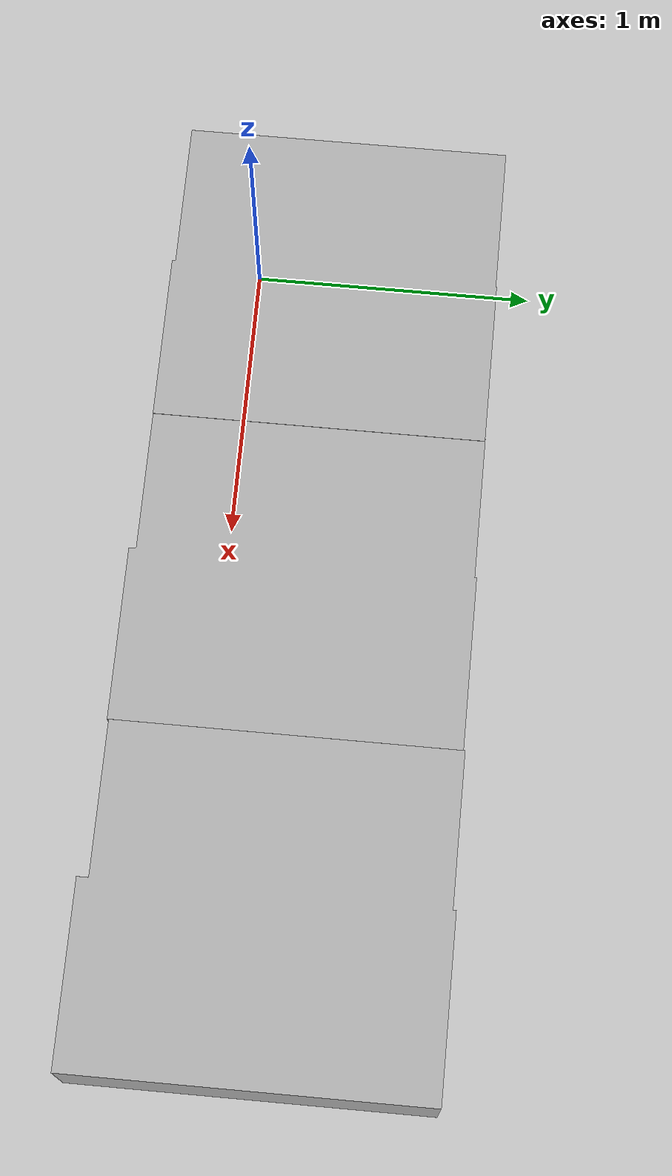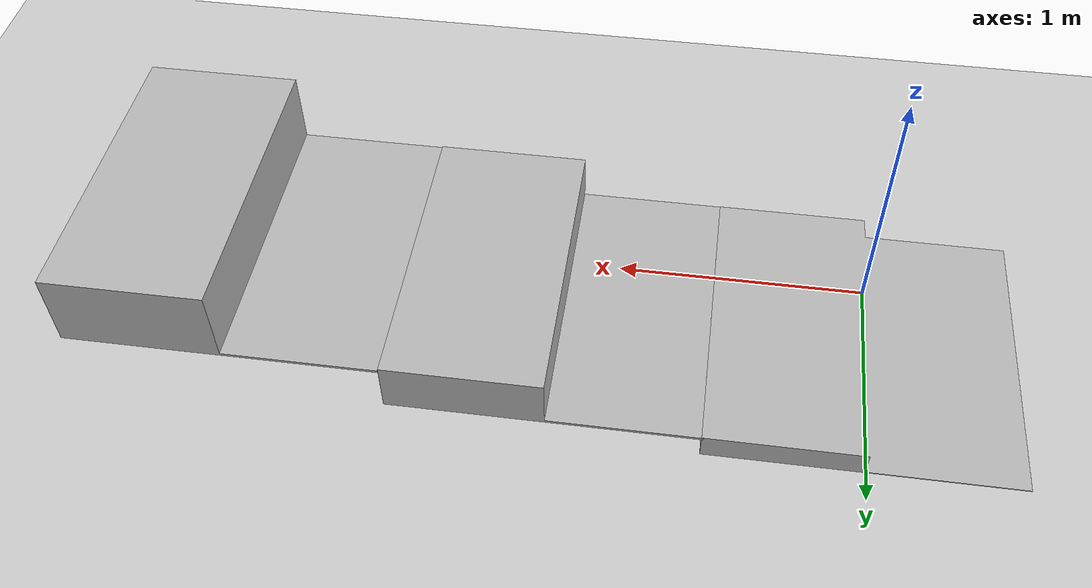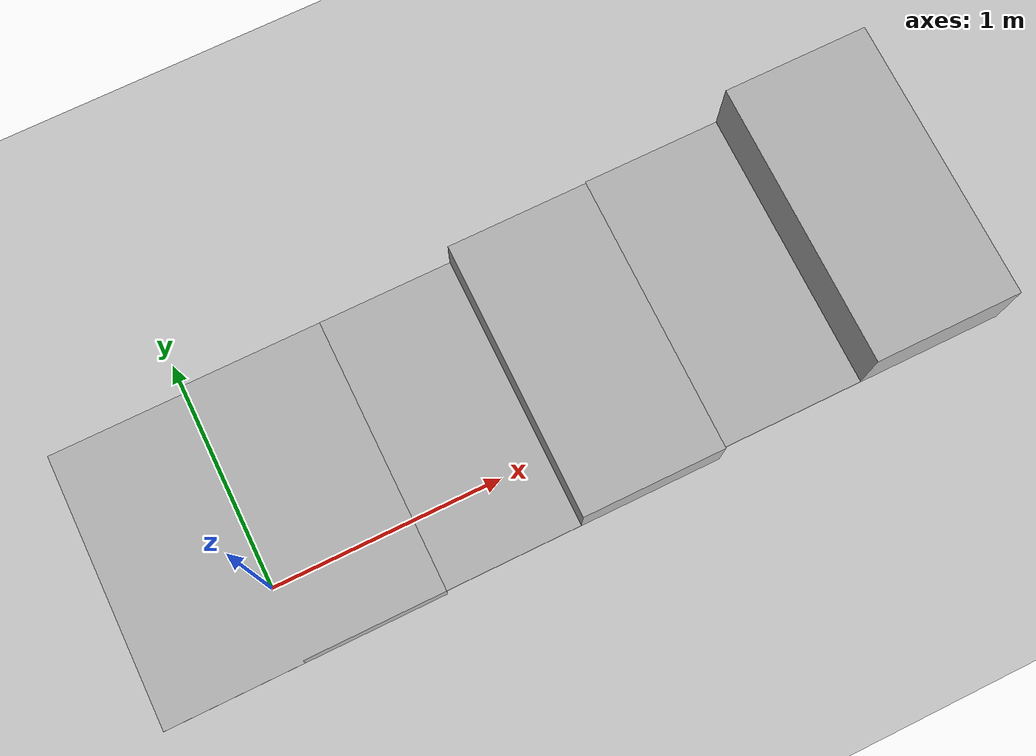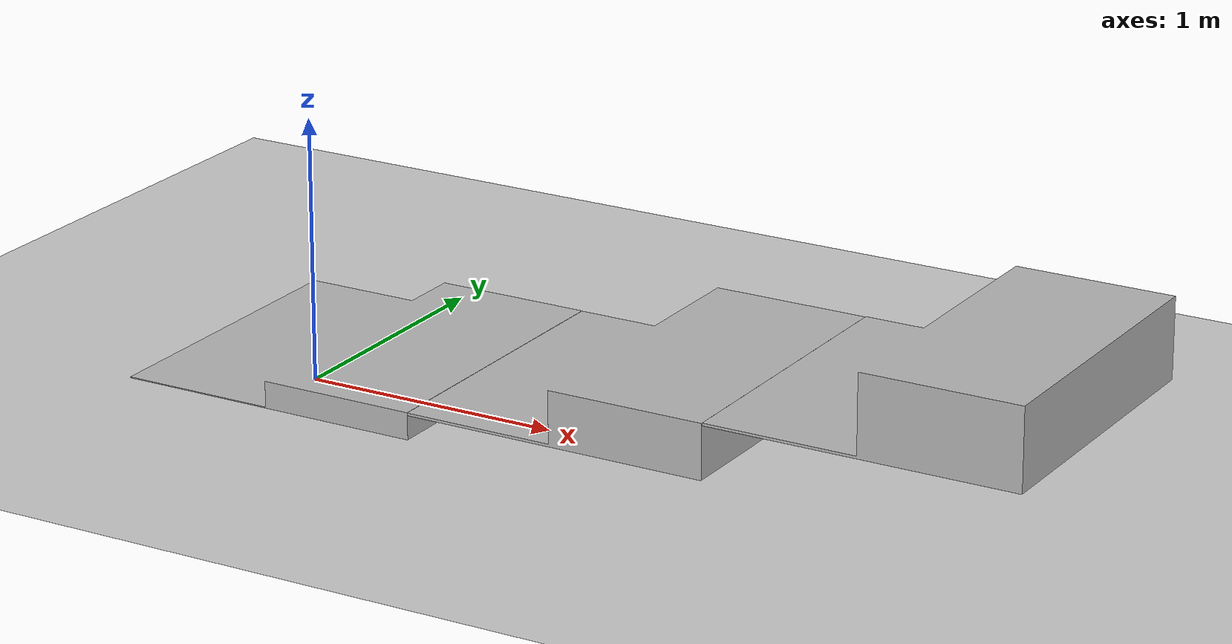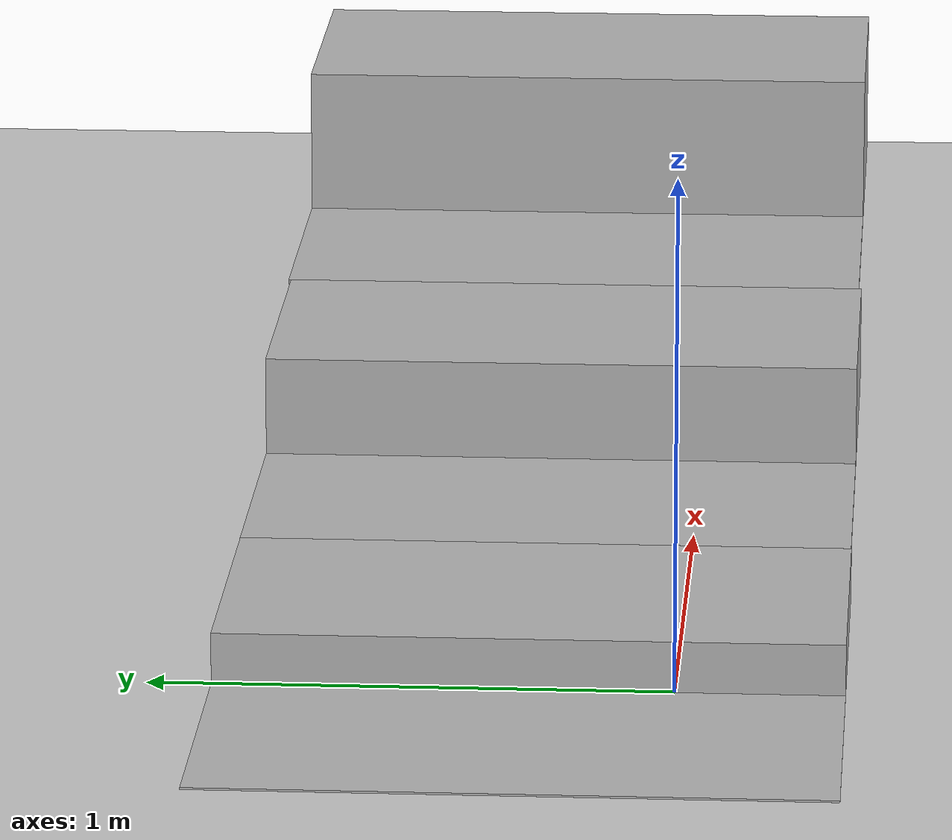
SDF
<sdf version="1.7">
 <world name="default">
  <light name="sun" type="directional">
   <pose>0 0 10 0 -0 0</pose>
   <diffuse>0.8 0.8 0.8 1</diffuse>
   <specular>0.2 0.2 0.2 1</specular>
   <attenuation>
    <range>1000</range>
    <constant>0.9</constant>
    <linear>0.01</linear>
    <quadratic>0.001</quadratic>
   </attenuation>
   <direction>-0.5 0.1 -0.9</direction>
   <spot><inner_angle>0</inner_angle><outer_angle>0</outer_angle><falloff>0</falloff></spot>
  </light>
  <model name="ground_plane">
   <static>1</static>
   <link name="link">
    <collision name="collision">
     <geometry><plane><normal>0 0 1</normal><size>100 100</size></plane></geometry>
     <surface>
      <contact><collide_bitmask>65535</collide_bitmask></contact>
      <friction><ode><mu>100</mu><mu2>50</mu2></ode></friction>
     </surface>
    </collision>
    <visual name="visual">
     <cast_shadows>0</cast_shadows>
     <geometry><plane><normal>0 0 1</normal><size>100 100</size></plane></geometry>
     <material>
      <script><uri>file://media/materials/scripts/gazebo.material</uri><name>Gazebo/Grey</name></script>
     </material>
    </visual>
   </link>
  </model>
  <gravity>0 0 -9.8</gravity>
  <magnetic_field>6e-06 2.3e-05 -4.2e-05</magnetic_field>
  <atmosphere type="adiabatic"/>
  <physics type="ode">
   <max_step_size>0.001</max_step_size>
   <real_time_factor>1</real_time_factor>
   <real_time_update_rate>1000</real_time_update_rate>
  </physics>
  <scene><ambient>0.4 0.4 0.4 1</ambient><background>0.7 0.7 0.7 1</background><shadows>1</shadows></scene>
  <spherical_coordinates>
   <surface_model>EARTH_WGS84</surface_model>
   <latitude_deg>0</latitude_deg>
   <longitude_deg>0</longitude_deg>
   <elevation>0</elevation>
   <heading_deg>0</heading_deg>
  </spherical_coordinates>
  <model name="Step10">
   <static>1</static>
   <link name="link">
    <gravity>0</gravity>
    <collision name="collision">
     <geometry><mesh><scale>1 1 1</scale><uri>model://step_10/meshes/step10.dae</uri></mesh></geometry>
    </collision>
    <visual name="visual">
     <geometry><mesh><scale>1 1 1</scale><uri>model://step_10/meshes/step10.dae</uri></mesh></geometry>
    </visual>
   </link>
   <pose>-0.599348 -0.321943 0 0 -0 0</pose>
  </model>
  <model name="Step20">
   <static>1</static>
   <link name="link">
    <gravity>0</gravity>
    <collision name="collision">
     <geometry><mesh><scale>1 1 1</scale><uri>model://step_20/meshes/step20.dae</uri></mesh></geometry>
    </collision>
    <visual name="visual">
     <geometry><mesh><scale>1 1 1</scale><uri>model://step_20/meshes/step20.dae</uri></mesh></geometry>
    </visual>
   </link>
   <pose>0.602482 -0.321141 0.098734 0 -0 0</pose>
  </model>
  <model name="Step30">
   <static>1</static>
   <link name="link">
    <gravity>0</gravity>
    <collision name="collision">
     <geometry><mesh><scale>1 1 1</scale><uri>model://step_30/meshes/step30.dae</uri></mesh></geometry>
    </collision>
    <visual name="visual">
     <geometry><mesh><scale>1 1 1</scale><uri>model://step_30/meshes/step30.dae</uri></mesh></geometry>
    </visual>
   </link>
   <pose>1.80231 -0.315743 0.288479 0 -0 0</pose>
  </model>
 </world>
</sdf>
